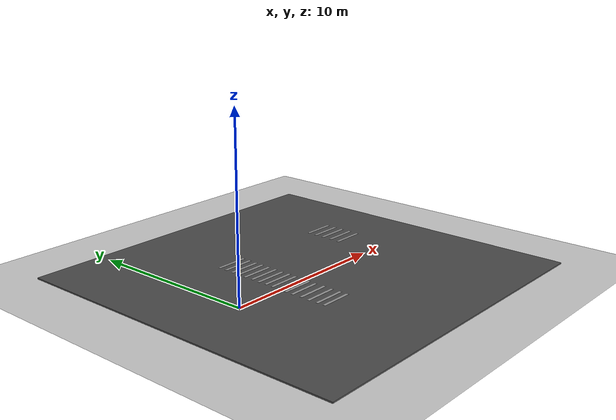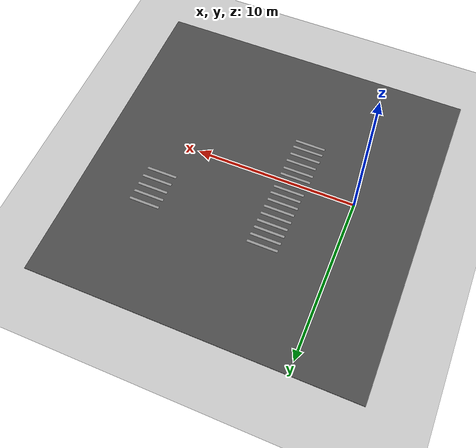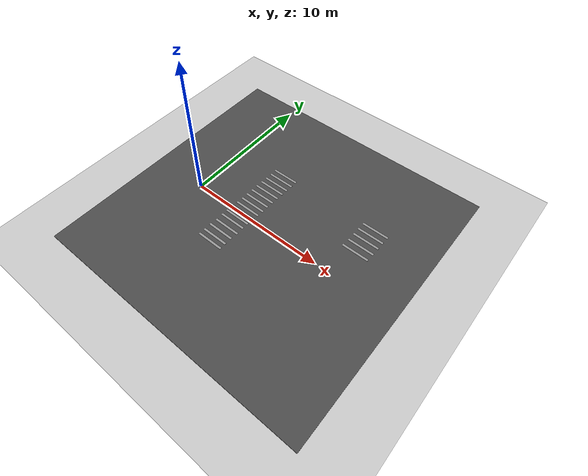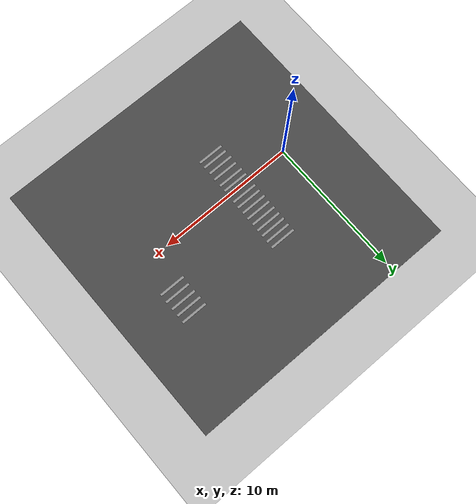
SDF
<sdf version="1.7">
 <world name="default">
  <model name="ground_plane">
   <static>1</static>
   <link name="link">
    <collision name="collision">
     <geometry><plane><normal>0 0 1</normal><size>100 100</size></plane></geometry>
     <surface><friction><ode><mu>100</mu><mu2>50</mu2></ode></friction></surface>
    </collision>
    <visual name="visual">
     <cast_shadows>0</cast_shadows>
     <geometry><plane><normal>0 0 1</normal><size>100 100</size></plane></geometry>
     <material>
      <script><uri>file://media/materials/scripts/gazebo.material</uri><name>Gazebo/Grey</name></script>
     </material>
    </visual>
   </link>
  </model>
  <model name="asphalt_plane">
   <static>1</static>
   <link name="link">
    <collision name="collision"><geometry><box><size>20 20.0001 0.1</size></box></geometry></collision>
    <visual name="visual">
     <cast_shadows>0</cast_shadows>
     <geometry><box><size>20 20.0001 0.1</size></box></geometry>
     <material>
      <script>
       <uri>model://asphalt_plane/materials/scripts</uri>
       <uri>model://asphalt_plane/materials/textures</uri>
       <name>vrc/asphalt</name>
      </script>
     </material>
    </visual>
   </link>
   <pose>5.82756 0.79161 0 0 -0 0</pose>
  </model>
  <model name="unit_box_clone_3_clone_4_clone_2">
   <pose>11.4489 2.26766 0.053193 0 -0 0.000169</pose>
   <link name="link">
    <inertial>
     <mass>1</mass>
     <inertia>
      <ixx>0.166667</ixx>
      <ixy>0</ixy>
      <ixz>0</ixz>
      <iyy>0.166667</iyy>
      <iyz>0</iyz>
      <izz>0.166667</izz>
     </inertia>
    </inertial>
    <collision name="collision"><geometry><box><size>1.90796 0.165074 0.006387</size></box></geometry></collision>
    <visual name="visual">
     <geometry><box><size>1.90796 0.165074 0.006387</size></box></geometry>
     <material>
      <script><name>Gazebo/Grey</name><uri>file://media/materials/scripts/gazebo.material</uri></script>
     </material>
    </visual>
   </link>
  </model>
  <model name="unit_box_clone_3_clone_4_clone_3">
   <pose>11.4869 2.84722 0.053193 0 -0 0.000169</pose>
   <link name="link">
    <inertial>
     <mass>1</mass>
     <inertia>
      <ixx>0.166667</ixx>
      <ixy>0</ixy>
      <ixz>0</ixz>
      <iyy>0.166667</iyy>
      <iyz>0</iyz>
      <izz>0.166667</izz>
     </inertia>
    </inertial>
    <collision name="collision"><geometry><box><size>1.90796 0.165074 0.006387</size></box></geometry></collision>
    <visual name="visual">
     <geometry><box><size>1.90796 0.165074 0.006387</size></box></geometry>
     <material>
      <script><name>Gazebo/Grey</name><uri>file://media/materials/scripts/gazebo.material</uri></script>
     </material>
    </visual>
   </link>
  </model>
  <model name="unit_box_clone_3_clone_4_clone_4">
   <pose>11.4888 3.4333 0.053193 0 -0 0.000169</pose>
   <link name="link">
    <inertial>
     <mass>1</mass>
     <inertia>
      <ixx>0.166667</ixx>
      <ixy>0</ixy>
      <ixz>0</ixz>
      <iyy>0.166667</iyy>
      <iyz>0</iyz>
      <izz>0.166667</izz>
     </inertia>
    </inertial>
    <collision name="collision"><geometry><box><size>1.90796 0.165074 0.006387</size></box></geometry></collision>
    <visual name="visual">
     <geometry><box><size>1.90796 0.165074 0.006387</size></box></geometry>
     <material>
      <script><name>Gazebo/Grey</name><uri>file://media/materials/scripts/gazebo.material</uri></script>
     </material>
    </visual>
   </link>
  </model>
  <model name="unit_box_clone_3_clone_4_clone_5">
   <pose>11.4849 3.97323 0.053193 0 -0 0.000169</pose>
   <link name="link">
    <inertial>
     <mass>1</mass>
     <inertia>
      <ixx>0.166667</ixx>
      <ixy>0</ixy>
      <ixz>0</ixz>
      <iyy>0.166667</iyy>
      <iyz>0</iyz>
      <izz>0.166667</izz>
     </inertia>
    </inertial>
    <collision name="collision"><geometry><box><size>1.90796 0.165074 0.006387</size></box></geometry></collision>
    <visual name="visual">
     <geometry><box><size>1.90796 0.165074 0.006387</size></box></geometry>
     <material>
      <script><name>Gazebo/Grey</name><uri>file://media/materials/scripts/gazebo.material</uri></script>
     </material>
    </visual>
   </link>
  </model>
  <model name="unit_box_clone_3_clone_4_clone_6">
   <pose>11.5065 4.52435 0.053193 0 -0 0.000169</pose>
   <link name="link">
    <inertial>
     <mass>1</mass>
     <inertia>
      <ixx>0.166667</ixx>
      <ixy>0</ixy>
      <ixz>0</ixz>
      <iyy>0.166667</iyy>
      <iyz>0</iyz>
      <izz>0.166667</izz>
     </inertia>
    </inertial>
    <collision name="collision"><geometry><box><size>1.90796 0.165074 0.006387</size></box></geometry></collision>
    <visual name="visual">
     <geometry><box><size>1.90796 0.165074 0.006387</size></box></geometry>
     <material>
      <script><name>Gazebo/Grey</name><uri>file://media/materials/scripts/gazebo.material</uri></script>
     </material>
    </visual>
   </link>
  </model>
  <model name="unit_box_clone_3_clone_4_clone_7">
   <pose>4 4.498 0.053193 0 -0 0.000169</pose>
   <link name="link">
    <inertial>
     <mass>1</mass>
     <inertia>
      <ixx>0.166667</ixx>
      <ixy>0</ixy>
      <ixz>0</ixz>
      <iyy>0.166667</iyy>
      <iyz>0</iyz>
      <izz>0.166667</izz>
     </inertia>
    </inertial>
    <collision name="collision"><geometry><box><size>1.90796 0.165074 0.006387</size></box></geometry></collision>
    <visual name="visual">
     <geometry><box><size>1.90796 0.165074 0.006387</size></box></geometry>
     <material>
      <script><name>Gazebo/Grey</name><uri>file://media/materials/scripts/gazebo.material</uri></script>
     </material>
    </visual>
   </link>
  </model>
  <model name="unit_box_clone_3_clone_4_clone_8">
   <pose>3.99733 4.0038 0.053193 0 -0 0.000169</pose>
   <link name="link">
    <inertial>
     <mass>1</mass>
     <inertia>
      <ixx>0.166667</ixx>
      <ixy>0</ixy>
      <ixz>0</ixz>
      <iyy>0.166667</iyy>
      <iyz>0</iyz>
      <izz>0.166667</izz>
     </inertia>
    </inertial>
    <collision name="collision"><geometry><box><size>1.90796 0.165074 0.006387</size></box></geometry></collision>
    <visual name="visual">
     <geometry><box><size>1.90796 0.165074 0.006387</size></box></geometry>
     <material>
      <script><name>Gazebo/Grey</name><uri>file://media/materials/scripts/gazebo.material</uri></script>
     </material>
    </visual>
   </link>
  </model>
  <model name="unit_box_clone_3_clone_4_clone_9">
   <pose>3.97062 3.50716 0.053193 0 -0 0.000169</pose>
   <link name="link">
    <inertial>
     <mass>1</mass>
     <inertia>
      <ixx>0.166667</ixx>
      <ixy>0</ixy>
      <ixz>0</ixz>
      <iyy>0.166667</iyy>
      <iyz>0</iyz>
      <izz>0.166667</izz>
     </inertia>
    </inertial>
    <collision name="collision"><geometry><box><size>1.90796 0.165074 0.006387</size></box></geometry></collision>
    <visual name="visual">
     <geometry><box><size>1.90796 0.165074 0.006387</size></box></geometry>
     <material>
      <script><name>Gazebo/Grey</name><uri>file://media/materials/scripts/gazebo.material</uri></script>
     </material>
    </visual>
   </link>
  </model>
  <model name="unit_box_clone_3_clone_4_clone_10">
   <pose>3.9586 3.03451 0.053193 0 -0 0.000169</pose>
   <link name="link">
    <inertial>
     <mass>1</mass>
     <inertia>
      <ixx>0.166667</ixx>
      <ixy>0</ixy>
      <ixz>0</ixz>
      <iyy>0.166667</iyy>
      <iyz>0</iyz>
      <izz>0.166667</izz>
     </inertia>
    </inertial>
    <collision name="collision"><geometry><box><size>1.90796 0.165074 0.006387</size></box></geometry></collision>
    <visual name="visual">
     <geometry><box><size>1.90796 0.165074 0.006387</size></box></geometry>
     <material>
      <script><name>Gazebo/Grey</name><uri>file://media/materials/scripts/gazebo.material</uri></script>
     </material>
    </visual>
   </link>
  </model>
  <model name="unit_box_clone_3_clone_4_clone_11">
   <pose>3.93079 2.52904 0.053193 0 -0 0.000169</pose>
   <link name="link">
    <inertial>
     <mass>1</mass>
     <inertia>
      <ixx>0.166667</ixx>
      <ixy>0</ixy>
      <ixz>0</ixz>
      <iyy>0.166667</iyy>
      <iyz>0</iyz>
      <izz>0.166667</izz>
     </inertia>
    </inertial>
    <collision name="collision"><geometry><box><size>1.90796 0.165074 0.006387</size></box></geometry></collision>
    <visual name="visual">
     <geometry><box><size>1.90796 0.165074 0.006387</size></box></geometry>
     <material>
      <script><name>Gazebo/Grey</name><uri>file://media/materials/scripts/gazebo.material</uri></script>
     </material>
    </visual>
   </link>
  </model>
  <model name="unit_box_clone_3_clone_4_clone_12">
   <pose>3.93896 2.02106 0.053193 0 -0 0.000169</pose>
   <link name="link">
    <inertial>
     <mass>1</mass>
     <inertia>
      <ixx>0.166667</ixx>
      <ixy>0</ixy>
      <ixz>0</ixz>
      <iyy>0.166667</iyy>
      <iyz>0</iyz>
      <izz>0.166667</izz>
     </inertia>
    </inertial>
    <collision name="collision"><geometry><box><size>1.90796 0.165074 0.006387</size></box></geometry></collision>
    <visual name="visual">
     <geometry><box><size>1.90796 0.165074 0.006387</size></box></geometry>
     <material>
      <script><name>Gazebo/Grey</name><uri>file://media/materials/scripts/gazebo.material</uri></script>
     </material>
    </visual>
   </link>
  </model>
  <model name="unit_box_clone_3_clone_4_clone_13">
   <pose>3.89977 1.52039 0.053193 0 -0 0.000169</pose>
   <link name="link">
    <inertial>
     <mass>1</mass>
     <inertia>
      <ixx>0.166667</ixx>
      <ixy>0</ixy>
      <ixz>0</ixz>
      <iyy>0.166667</iyy>
      <iyz>0</iyz>
      <izz>0.166667</izz>
     </inertia>
    </inertial>
    <collision name="collision"><geometry><box><size>1.90796 0.165074 0.006387</size></box></geometry></collision>
    <visual name="visual">
     <geometry><box><size>1.90796 0.165074 0.006387</size></box></geometry>
     <material>
      <script><name>Gazebo/Grey</name><uri>file://media/materials/scripts/gazebo.material</uri></script>
     </material>
    </visual>
   </link>
  </model>
  <model name="unit_box_clone_3_clone_4_clone_14">
   <pose>3.92039 1.02634 0.053193 0 -0 0.000169</pose>
   <link name="link">
    <inertial>
     <mass>1</mass>
     <inertia>
      <ixx>0.166667</ixx>
      <ixy>0</ixy>
      <ixz>0</ixz>
      <iyy>0.166667</iyy>
      <iyz>0</iyz>
      <izz>0.166667</izz>
     </inertia>
    </inertial>
    <collision name="collision"><geometry><box><size>1.90796 0.165074 0.006387</size></box></geometry></collision>
    <visual name="visual">
     <geometry><box><size>1.90796 0.165074 0.006387</size></box></geometry>
     <material>
      <script><name>Gazebo/Grey</name><uri>file://media/materials/scripts/gazebo.material</uri></script>
     </material>
    </visual>
   </link>
  </model>
  <model name="unit_box_clone_3_clone_4_clone_15">
   <pose>3.88356 0.552586 0.053193 0 -0 0.000169</pose>
   <link name="link">
    <inertial>
     <mass>1</mass>
     <inertia>
      <ixx>0.166667</ixx>
      <ixy>0</ixy>
      <ixz>0</ixz>
      <iyy>0.166667</iyy>
      <iyz>0</iyz>
      <izz>0.166667</izz>
     </inertia>
    </inertial>
    <collision name="collision"><geometry><box><size>1.90796 0.165074 0.006387</size></box></geometry></collision>
    <visual name="visual">
     <geometry><box><size>1.90796 0.165074 0.006387</size></box></geometry>
     <material>
      <script><name>Gazebo/Grey</name><uri>file://media/materials/scripts/gazebo.material</uri></script>
     </material>
    </visual>
   </link>
  </model>
  <model name="unit_box_clone_3_clone_4_clone_16">
   <pose>3.8496 0.103853 0.053193 0 -0 0.000169</pose>
   <link name="link">
    <inertial>
     <mass>1</mass>
     <inertia>
      <ixx>0.166667</ixx>
      <ixy>0</ixy>
      <ixz>0</ixz>
      <iyy>0.166667</iyy>
      <iyz>0</iyz>
      <izz>0.166667</izz>
     </inertia>
    </inertial>
    <collision name="collision"><geometry><box><size>1.90796 0.165074 0.006387</size></box></geometry></collision>
    <visual name="visual">
     <geometry><box><size>1.90796 0.165074 0.006387</size></box></geometry>
     <material>
      <script><name>Gazebo/Grey</name><uri>file://media/materials/scripts/gazebo.material</uri></script>
     </material>
    </visual>
   </link>
  </model>
  <model name="unit_box_clone_3_clone_4_clone_17">
   <pose>3.83179 -0.416608 0.053193 0 -0 0.000169</pose>
   <link name="link">
    <inertial>
     <mass>1</mass>
     <inertia>
      <ixx>0.166667</ixx>
      <ixy>0</ixy>
      <ixz>0</ixz>
      <iyy>0.166667</iyy>
      <iyz>0</iyz>
      <izz>0.166667</izz>
     </inertia>
    </inertial>
    <collision name="collision"><geometry><box><size>1.90796 0.165074 0.006387</size></box></geometry></collision>
    <visual name="visual">
     <geometry><box><size>1.90796 0.165074 0.006387</size></box></geometry>
     <material>
      <script><name>Gazebo/Grey</name><uri>file://media/materials/scripts/gazebo.material</uri></script>
     </material>
    </visual>
   </link>
  </model>
  <model name="unit_box_clone_3_clone_4_clone_18">
   <pose>3.82007 -0.876906 0.053193 0 -0 0.000169</pose>
   <link name="link">
    <inertial>
     <mass>1</mass>
     <inertia>
      <ixx>0.166667</ixx>
      <ixy>0</ixy>
      <ixz>0</ixz>
      <iyy>0.166667</iyy>
      <iyz>0</iyz>
      <izz>0.166667</izz>
     </inertia>
    </inertial>
    <collision name="collision"><geometry><box><size>1.90796 0.165074 0.006387</size></box></geometry></collision>
    <visual name="visual">
     <geometry><box><size>1.90796 0.165074 0.006387</size></box></geometry>
     <material>
      <script><name>Gazebo/Grey</name><uri>file://media/materials/scripts/gazebo.material</uri></script>
     </material>
    </visual>
   </link>
  </model>
  <model name="unit_box_clone_3_clone_4_clone_19">
   <pose>3.84406 -1.44599 0.053193 0 -0 0.000169</pose>
   <link name="link">
    <inertial>
     <mass>1</mass>
     <inertia>
      <ixx>0.166667</ixx>
      <ixy>0</ixy>
      <ixz>0</ixz>
      <iyy>0.166667</iyy>
      <iyz>0</iyz>
      <izz>0.166667</izz>
     </inertia>
    </inertial>
    <collision name="collision"><geometry><box><size>1.90796 0.165074 0.006387</size></box></geometry></collision>
    <visual name="visual">
     <geometry><box><size>1.90796 0.165074 0.006387</size></box></geometry>
     <material>
      <script><name>Gazebo/Grey</name><uri>file://media/materials/scripts/gazebo.material</uri></script>
     </material>
    </visual>
   </link>
  </model>
  <model name="unit_box_clone_3_clone_4_clone_20">
   <pose>3.78889 -1.98008 0.053193 0 -0 0.000169</pose>
   <link name="link">
    <inertial>
     <mass>1</mass>
     <inertia>
      <ixx>0.166667</ixx>
      <ixy>0</ixy>
      <ixz>0</ixz>
      <iyy>0.166667</iyy>
      <iyz>0</iyz>
      <izz>0.166667</izz>
     </inertia>
    </inertial>
    <collision name="collision"><geometry><box><size>1.90796 0.165074 0.006387</size></box></geometry></collision>
    <visual name="visual">
     <geometry><box><size>1.90796 0.165074 0.006387</size></box></geometry>
     <material>
      <script><name>Gazebo/Grey</name><uri>file://media/materials/scripts/gazebo.material</uri></script>
     </material>
    </visual>
   </link>
  </model>
  <model name="unit_box_clone_3_clone_4_clone_21">
   <pose>3.80384 -2.52052 0.053193 0 -0 0.000169</pose>
   <link name="link">
    <inertial>
     <mass>1</mass>
     <inertia>
      <ixx>0.166667</ixx>
      <ixy>0</ixy>
      <ixz>0</ixz>
      <iyy>0.166667</iyy>
      <iyz>0</iyz>
      <izz>0.166667</izz>
     </inertia>
    </inertial>
    <collision name="collision"><geometry><box><size>1.90796 0.165074 0.006387</size></box></geometry></collision>
    <visual name="visual">
     <geometry><box><size>1.90796 0.165074 0.006387</size></box></geometry>
     <material>
      <script><name>Gazebo/Grey</name><uri>file://media/materials/scripts/gazebo.material</uri></script>
     </material>
    </visual>
   </link>
  </model>
  <model name="unit_box_clone_3_clone_4_clone_22">
   <pose>3.8038 -2.97562 0.053193 0 -0 0.000169</pose>
   <link name="link">
    <inertial>
     <mass>1</mass>
     <inertia>
      <ixx>0.166667</ixx>
      <ixy>0</ixy>
      <ixz>0</ixz>
      <iyy>0.166667</iyy>
      <iyz>0</iyz>
      <izz>0.166667</izz>
     </inertia>
    </inertial>
    <collision name="collision"><geometry><box><size>1.90796 0.165074 0.006387</size></box></geometry></collision>
    <visual name="visual">
     <geometry><box><size>1.90796 0.165074 0.006387</size></box></geometry>
     <material>
      <script><name>Gazebo/Grey</name><uri>file://media/materials/scripts/gazebo.material</uri></script>
     </material>
    </visual>
   </link>
  </model>
 </world>
</sdf>
